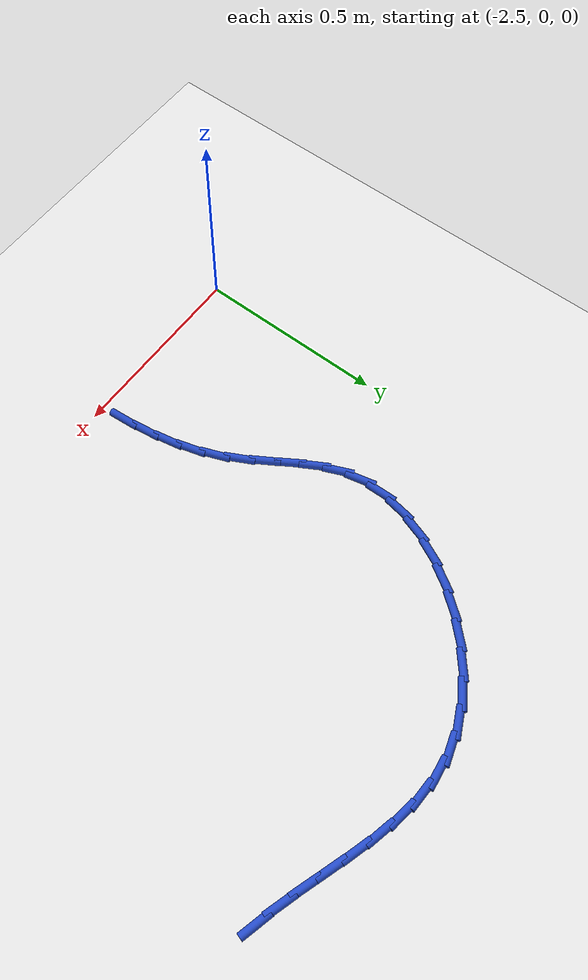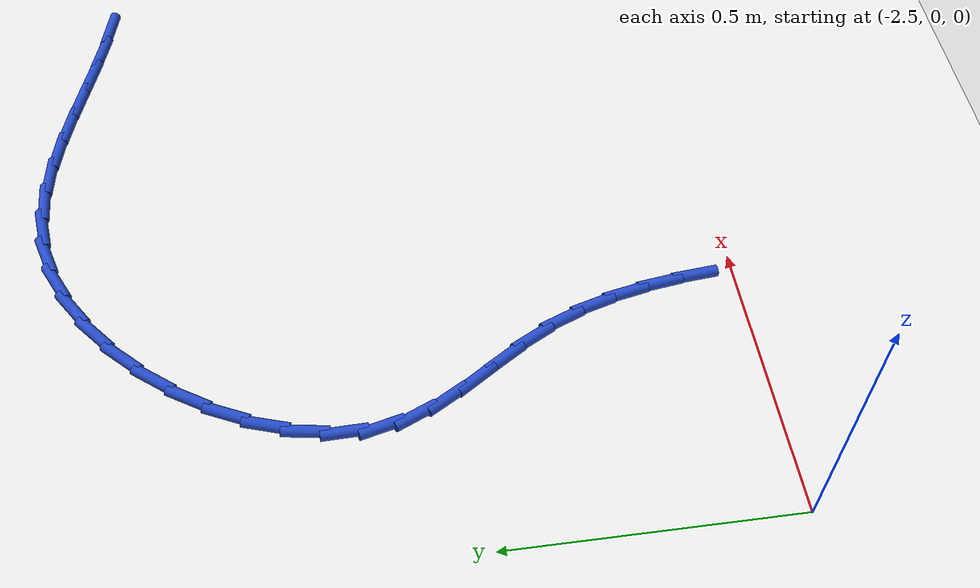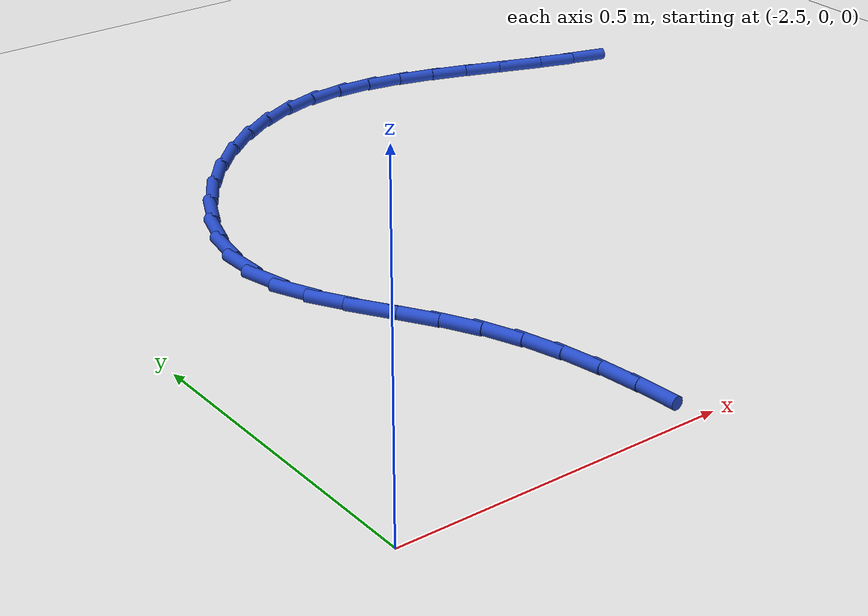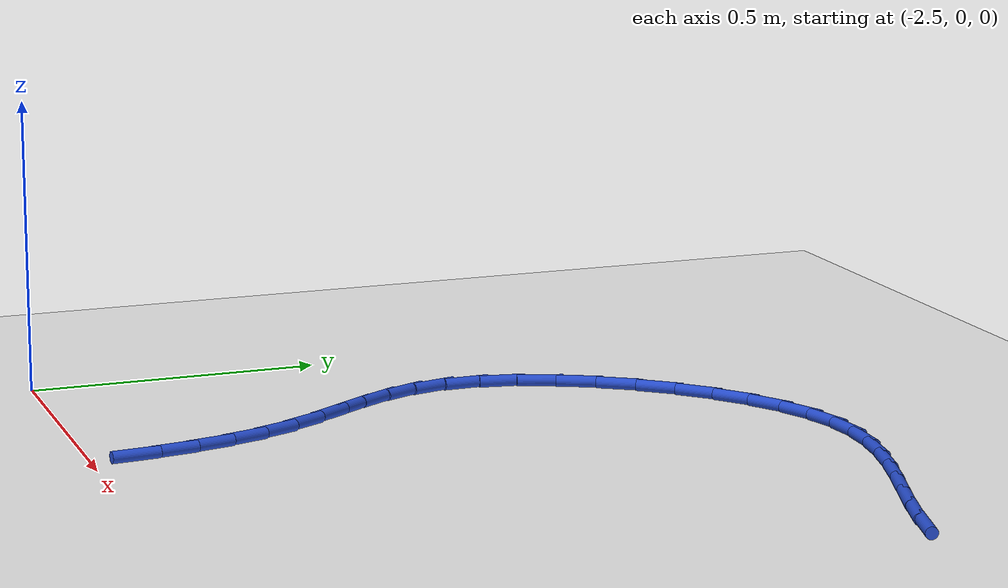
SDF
<sdf version="1.6">
 <world name="default">
  <model name="ground_plane">
   <static>1</static>
   <link name="link">
    <collision name="collision">
     <geometry><plane><normal>0 0 1</normal><size>100 100</size></plane></geometry>
     <surface><friction><ode><mu>100</mu><mu2>50</mu2></ode></friction></surface>
    </collision>
    <visual name="visual">
     <cast_shadows>0</cast_shadows>
     <geometry><plane><normal>0 0 1</normal><size>100 100</size></plane></geometry>
     <material>
      <script><uri>file://media/materials/scripts/gazebo.material</uri><name>Gazebo/WhiteGlow</name></script>
     </material>
    </visual>
   </link>
  </model>
  <model name="line">
   <link name="link_32">
    <pose>-1.3066464940778504 1.056069449157351 0.01 0 1.57 -0.2815607092845529</pose>
    <collision name="collision">
     <geometry><cylinder><radius>0.01</radius><length>0.08</length></cylinder></geometry>
    </collision>
    <visual name="visual">
     <material>
      <script><name>Gazebo/Blue</name><uri>file://media/materials/scripts/gazebo.material</uri></script>
     </material>
     <geometry><cylinder><radius>0.01</radius><length>0.08</length></cylinder></geometry>
    </visual>
   </link>
   <link name="link_33">
    <pose>-1.367734367765331 1.0737388017879552 0.01 0 1.57 -0.3284221829658937</pose>
    <collision name="collision">
     <geometry><cylinder><radius>0.01</radius><length>0.08</length></cylinder></geometry>
    </collision>
    <visual name="visual">
     <material>
      <script><name>Gazebo/Blue</name><uri>file://media/materials/scripts/gazebo.material</uri></script>
     </material>
     <geometry><cylinder><radius>0.01</radius><length>0.08</length></cylinder></geometry>
    </visual>
   </link>
   <link name="link_34">
    <pose>-1.4284144937961425 1.0944163366937176 0.01 0 1.57 -0.34918571355739486</pose>
    <collision name="collision">
     <geometry><cylinder><radius>0.01</radius><length>0.08</length></cylinder></geometry>
    </collision>
    <visual name="visual">
     <material>
      <script><name>Gazebo/Blue</name><uri>file://media/materials/scripts/gazebo.material</uri></script>
     </material>
     <geometry><cylinder><radius>0.01</radius><length>0.08</length></cylinder></geometry>
    </visual>
   </link>
   <link name="link_35">
    <pose>-1.4887466337514765 1.1163836297667258 0.01 0 1.57 -0.34441716051311383</pose>
    <collision name="collision">
     <geometry><cylinder><radius>0.01</radius><length>0.08</length></cylinder></geometry>
    </collision>
    <visual name="visual">
     <material>
      <script><name>Gazebo/Blue</name><uri>file://media/materials/scripts/gazebo.material</uri></script>
     </material>
     <geometry><cylinder><radius>0.01</radius><length>0.08</length></cylinder></geometry>
    </visual>
   </link>
   <link name="link_36">
    <pose>-1.548790549212523 1.1379222568990657 0.01 0 1.57 -0.3134985858551324</pose>
    <collision name="collision">
     <geometry><cylinder><radius>0.01</radius><length>0.08</length></cylinder></geometry>
    </collision>
    <visual name="visual">
     <material>
      <script><name>Gazebo/Blue</name><uri>file://media/materials/scripts/gazebo.material</uri></script>
     </material>
     <geometry><cylinder><radius>0.01</radius><length>0.08</length></cylinder></geometry>
    </visual>
   </link>
   <link name="link_37">
    <pose>-1.6086060017604735 1.157313793982824 0.01 0 1.57 -0.254648627394546</pose>
    <collision name="collision">
     <geometry><cylinder><radius>0.01</radius><length>0.08</length></cylinder></geometry>
    </collision>
    <visual name="visual">
     <material>
      <script><name>Gazebo/Blue</name><uri>file://media/materials/scripts/gazebo.material</uri></script>
     </material>
     <geometry><cylinder><radius>0.01</radius><length>0.08</length></cylinder></geometry>
    </visual>
   </link>
   <link name="link_38">
    <pose>-1.6682527529765185 1.1728398169100875 0.01 0 1.57 -0.16546105815105464</pose>
    <collision name="collision">
     <geometry><cylinder><radius>0.01</radius><length>0.08</length></cylinder></geometry>
    </collision>
    <visual name="visual">
     <material>
      <script><name>Gazebo/Blue</name><uri>file://media/materials/scripts/gazebo.material</uri></script>
     </material>
     <geometry><cylinder><radius>0.01</radius><length>0.08</length></cylinder></geometry>
    </visual>
   </link>
   <link name="link_39">
    <pose>-1.7277905644418499 1.1827819015729435 0.01 0 1.57 -0.04434446783416812</pose>
    <collision name="collision">
     <geometry><cylinder><radius>0.01</radius><length>0.08</length></cylinder></geometry>
    </collision>
    <visual name="visual">
     <material>
      <script><name>Gazebo/Blue</name><uri>file://media/materials/scripts/gazebo.material</uri></script>
     </material>
     <geometry><cylinder><radius>0.01</radius><length>0.08</length></cylinder></geometry>
    </visual>
   </link>
   <link name="link_40">
    <pose>-1.7872791977376568 1.185421623863478 0.01 0 1.57 0.10683782980103676</pose>
    <collision name="collision">
     <geometry><cylinder><radius>0.01</radius><length>0.08</length></cylinder></geometry>
    </collision>
    <visual name="visual">
     <material>
      <script><name>Gazebo/Blue</name><uri>file://media/materials/scripts/gazebo.material</uri></script>
     </material>
     <geometry><cylinder><radius>0.01</radius><length>0.08</length></cylinder></geometry>
    </visual>
   </link>
   <link name="link_41">
    <pose>-1.846778414445132 1.1790405596737783 0.01 0 1.57 0.2774899307493941</pose>
    <collision name="collision">
     <geometry><cylinder><radius>0.01</radius><length>0.08</length></cylinder></geometry>
    </collision>
    <visual name="visual">
     <material>
      <script><name>Gazebo/Blue</name><uri>file://media/materials/scripts/gazebo.material</uri></script>
     </material>
     <geometry><cylinder><radius>0.01</radius><length>0.08</length></cylinder></geometry>
    </visual>
   </link>
   <link name="link_42">
    <pose>-1.9062772178504959 1.162093000265279 0.01 0 1.57 0.43446795102693986</pose>
    <collision name="collision">
     <geometry><cylinder><radius>0.01</radius><length>0.08</length></cylinder></geometry>
    </collision>
    <visual name="visual">
     <material>
      <script><name>Gazebo/Blue</name><uri>file://media/materials/scripts/gazebo.material</uri></script>
     </material>
     <geometry><cylinder><radius>0.01</radius><length>0.08</length></cylinder></geometry>
    </visual>
   </link>
   <link name="link_43">
    <pose>-1.9650284813437562 1.1348300714185238 0.01 0 1.57 0.5680161035739169</pose>
    <collision name="collision">
     <geometry><cylinder><radius>0.01</radius><length>0.08</length></cylinder></geometry>
    </collision>
    <visual name="visual">
     <material>
      <script><name>Gazebo/Blue</name><uri>file://media/materials/scripts/gazebo.material</uri></script>
     </material>
     <geometry><cylinder><radius>0.01</radius><length>0.08</length></cylinder></geometry>
    </visual>
   </link>
   <link name="link_44">
    <pose>-2.0218482172135377 1.098569242111165 0.01 0 1.57 0.6856415757102746</pose>
    <collision name="collision">
     <geometry><cylinder><radius>0.01</radius><length>0.08</length></cylinder></geometry>
    </collision>
    <visual name="visual">
     <material>
      <script><name>Gazebo/Blue</name><uri>file://media/materials/scripts/gazebo.material</uri></script>
     </material>
     <geometry><cylinder><radius>0.01</radius><length>0.08</length></cylinder></geometry>
    </visual>
   </link>
   <link name="link_45">
    <pose>-2.0755466904234097 1.0546420100841325 0.01 0 1.57 0.7941753077256412</pose>
    <collision name="collision">
     <geometry><cylinder><radius>0.01</radius><length>0.08</length></cylinder></geometry>
    </collision>
    <visual name="visual">
     <material>
      <script><name>Gazebo/Blue</name><uri>file://media/materials/scripts/gazebo.material</uri></script>
     </material>
     <geometry><cylinder><radius>0.01</radius><length>0.08</length></cylinder></geometry>
    </visual>
   </link>
   <link name="link_46">
    <pose>-2.124934165936939 1.0043798730783569 0.01 0 1.57 0.8996591624514689</pose>
    <collision name="collision">
     <geometry><cylinder><radius>0.01</radius><length>0.08</length></cylinder></geometry>
    </collision>
    <visual name="visual">
     <material>
      <script><name>Gazebo/Blue</name><uri>file://media/materials/scripts/gazebo.material</uri></script>
     </material>
     <geometry><cylinder><radius>0.01</radius><length>0.08</length></cylinder></geometry>
    </visual>
   </link>
   <link name="link_47">
    <pose>-2.168820908717693 0.949114328834768 0.01 0 1.57 1.0078122263516884</pose>
    <collision name="collision">
     <geometry><cylinder><radius>0.01</radius><length>0.08</length></cylinder></geometry>
    </collision>
    <visual name="visual">
     <material>
      <script><name>Gazebo/Blue</name><uri>file://media/materials/scripts/gazebo.material</uri></script>
     </material>
     <geometry><cylinder><radius>0.01</radius><length>0.08</length></cylinder></geometry>
    </visual>
   </link>
   <link name="link_48">
    <pose>-2.206017183729242 0.8901768750942971 0.01 0 1.57 1.1245677082462948</pose>
    <collision name="collision">
     <geometry><cylinder><radius>0.01</radius><length>0.08</length></cylinder></geometry>
    </collision>
    <visual name="visual">
     <material>
      <script><name>Gazebo/Blue</name><uri>file://media/materials/scripts/gazebo.material</uri></script>
     </material>
     <geometry><cylinder><radius>0.01</radius><length>0.08</length></cylinder></geometry>
    </visual>
   </link>
   <link name="link_49">
    <pose>-2.235333255935151 0.8288990095978743 0.01 0 1.57 1.256521866944584</pose>
    <collision name="collision">
     <geometry><cylinder><radius>0.01</radius><length>0.08</length></cylinder></geometry>
    </collision>
    <visual name="visual">
     <material>
      <script><name>Gazebo/Blue</name><uri>file://media/materials/scripts/gazebo.material</uri></script>
     </material>
     <geometry><cylinder><radius>0.01</radius><length>0.08</length></cylinder></geometry>
    </visual>
   </link>
   <link name="link_50">
    <pose>-2.255579390298989 0.7666122300864295 0.01 0 1.57 1.4110053216336642</pose>
    <collision name="collision">
     <geometry><cylinder><radius>0.01</radius><length>0.08</length></cylinder></geometry>
    </collision>
    <visual name="visual">
     <material>
      <script><name>Gazebo/Blue</name><uri>file://media/materials/scripts/gazebo.material</uri></script>
     </material>
     <geometry><cylinder><radius>0.01</radius><length>0.08</length></cylinder></geometry>
    </visual>
   </link>
   <link name="link_51">
    <pose>-2.265565851784325 0.7046480343008946 0.01 0 1.57 -1.5465440166764688</pose>
    <collision name="collision">
     <geometry><cylinder><radius>0.01</radius><length>0.08</length></cylinder></geometry>
    </collision>
    <visual name="visual">
     <material>
      <script><name>Gazebo/Blue</name><uri>file://media/materials/scripts/gazebo.material</uri></script>
     </material>
     <geometry><cylinder><radius>0.01</radius><length>0.08</length></cylinder></geometry>
    </visual>
   </link>
   <link name="link_52">
    <pose>-2.2641029053547252 0.6443379199821984 0.01 0 1.57 -1.3350129986179637</pose>
    <collision name="collision">
     <geometry><cylinder><radius>0.01</radius><length>0.08</length></cylinder></geometry>
    </collision>
    <visual name="visual">
     <material>
      <script><name>Gazebo/Blue</name><uri>file://media/materials/scripts/gazebo.material</uri></script>
     </material>
     <geometry><cylinder><radius>0.01</radius><length>0.08</length></cylinder></geometry>
    </visual>
   </link>
   <link name="link_53">
    <pose>-2.2502946918669497 0.5868640663818186 0.01 0 1.57 -1.1563525202351772</pose>
    <collision name="collision">
     <geometry><cylinder><radius>0.01</radius><length>0.08</length></cylinder></geometry>
    </collision>
    <visual name="visual">
     <material>
      <script><name>Gazebo/Blue</name><uri>file://media/materials/scripts/gazebo.material</uri></script>
     </material>
     <geometry><cylinder><radius>0.01</radius><length>0.08</length></cylinder></geometry>
    </visual>
   </link>
   <link name="link_54">
    <pose>-2.2261328933263336 0.5319414916382156 0.01 0 1.57 -1.0471615127837848</pose>
    <collision name="collision">
     <geometry><cylinder><radius>0.01</radius><length>0.08</length></cylinder></geometry>
    </collision>
    <visual name="visual">
     <material>
      <script><name>Gazebo/Blue</name><uri>file://media/materials/scripts/gazebo.material</uri></script>
     </material>
     <geometry><cylinder><radius>0.01</radius><length>0.08</length></cylinder></geometry>
    </visual>
   </link>
   <link name="link_55">
    <pose>-2.19524835512525 0.4784523541467022 0.01 0 1.57 -1.0025453523007282</pose>
    <collision name="collision">
     <geometry><cylinder><radius>0.01</radius><length>0.08</length></cylinder></geometry>
    </collision>
    <visual name="visual">
     <material>
      <script><name>Gazebo/Blue</name><uri>file://media/materials/scripts/gazebo.material</uri></script>
     </material>
     <geometry><cylinder><radius>0.01</radius><length>0.08</length></cylinder></geometry>
    </visual>
   </link>
   <link name="link_56">
    <pose>-2.1612907447265206 0.4252692487991081 0.01 0 1.57 -1.0171628537104063</pose>
    <collision name="collision">
     <geometry><cylinder><radius>0.01</radius><length>0.08</length></cylinder></geometry>
    </collision>
    <visual name="visual">
     <material>
      <script><name>Gazebo/Blue</name><uri>file://media/materials/scripts/gazebo.material</uri></script>
     </material>
     <geometry><cylinder><radius>0.01</radius><length>0.08</length></cylinder></geometry>
    </visual>
   </link>
   <link name="link_57">
    <pose>-2.127909729592966 0.37126477048726414 0.01 0 1.57 -1.0901469803068564</pose>
    <collision name="collision">
     <geometry><cylinder><radius>0.01</radius><length>0.08</length></cylinder></geometry>
    </collision>
    <visual name="visual">
     <material>
      <script><name>Gazebo/Blue</name><uri>file://media/materials/scripts/gazebo.material</uri></script>
     </material>
     <geometry><cylinder><radius>0.01</radius><length>0.08</length></cylinder></geometry>
    </visual>
   </link>
   <link name="link_58">
    <pose>-2.0987368889835447 0.3153177040383553 0.01 0 1.57 -1.197887527681714</pose>
    <collision name="collision">
     <geometry><cylinder><radius>0.01</radius><length>0.08</length></cylinder></geometry>
    </collision>
    <visual name="visual">
     <material>
      <script><name>Gazebo/Blue</name><uri>file://media/materials/scripts/gazebo.material</uri></script>
     </material>
     <geometry><cylinder><radius>0.01</radius><length>0.08</length></cylinder></geometry>
    </visual>
   </link>
   <link name="link_59">
    <pose>-2.0758579963857136 0.256835822003852 0.01 0 1.57 -1.2945084829352962</pose>
    <collision name="collision">
     <geometry><cylinder><radius>0.01</radius><length>0.08</length></cylinder></geometry>
    </collision>
    <visual name="visual">
     <material>
      <script><name>Gazebo/Blue</name><uri>file://media/materials/scripts/gazebo.material</uri></script>
     </material>
     <geometry><cylinder><radius>0.01</radius><length>0.08</length></cylinder></geometry>
    </visual>
   </link>
   <link name="link_60">
    <pose>-2.0586520688069503 0.19615317174731972 0.01 0 1.57 -1.3743838655353655</pose>
    <collision name="collision">
     <geometry><cylinder><radius>0.01</radius><length>0.08</length></cylinder></geometry>
    </collision>
    <visual name="visual">
     <material>
      <script><name>Gazebo/Blue</name><uri>file://media/materials/scripts/gazebo.material</uri></script>
     </material>
     <geometry><cylinder><radius>0.01</radius><length>0.08</length></cylinder></geometry>
    </visual>
   </link>
   <link name="link_61">
    <pose>-2.0462247485158715 0.13369735176510808 0.01 0 1.57 -1.4376870749285462</pose>
    <collision name="collision">
     <geometry><cylinder><radius>0.01</radius><length>0.08</length></cylinder></geometry>
    </collision>
    <visual name="visual">
     <material>
      <script><name>Gazebo/Blue</name><uri>file://media/materials/scripts/gazebo.material</uri></script>
     </material>
     <geometry><cylinder><radius>0.01</radius><length>0.08</length></cylinder></geometry>
    </visual>
   </link>
   <link name="link_62">
    <pose>-2.037681677781095 0.069895960553566 0.01 0 1.57 -1.4852019952115076</pose>
    <collision name="collision">
     <geometry><cylinder><radius>0.01</radius><length>0.08</length></cylinder></geometry>
    </collision>
    <visual name="visual">
     <material>
      <script><name>Gazebo/Blue</name><uri>file://media/materials/scripts/gazebo.material</uri></script>
     </material>
     <geometry><cylinder><radius>0.01</radius><length>0.08</length></cylinder></geometry>
    </visual>
   </link>
  </model>
 </world>
</sdf>
